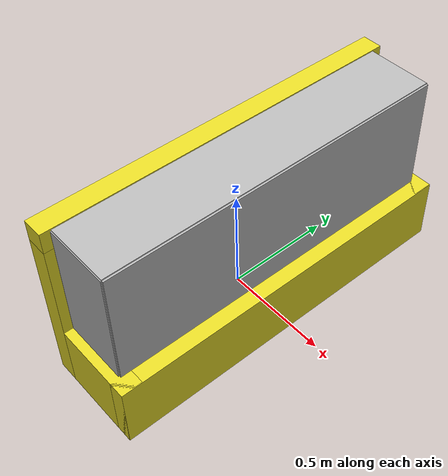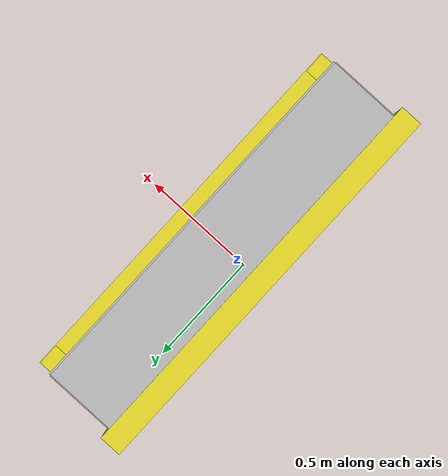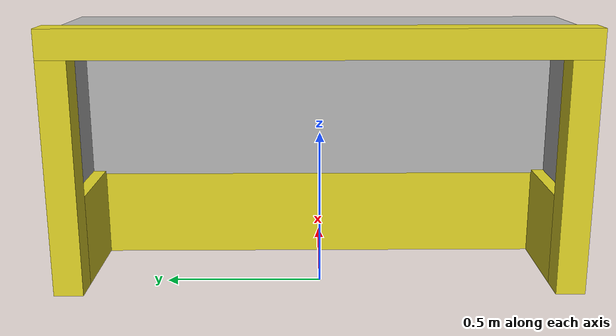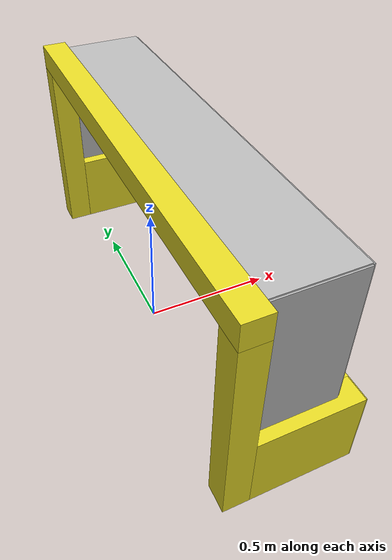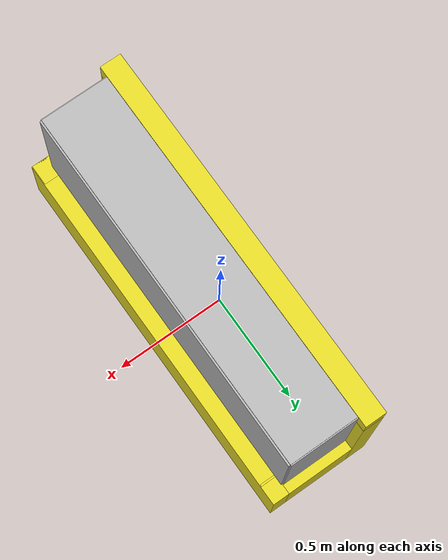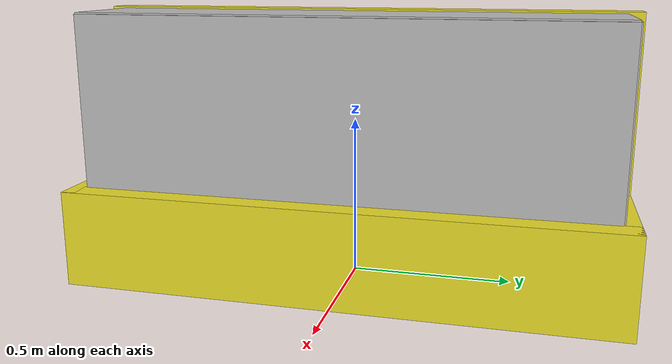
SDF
<?xml version="1.0" ?>
<sdf version="1.4">
  <model name="FIRA_Goal">
    <static>true</static>

    <link name="left_post">
      <pose>-0.078125 0.796875 0.375 0 0 0</pose>
      <collision name="left_post_collision">
        <geometry>
          <box><size>0.09375 0.09375 0.75</size></box>
        </geometry>
      </collision>
      <visual name="visual">
        <geometry>
          <box><size>0.09375 0.09375 0.75</size></box>
        </geometry>
        <material>
          <script>
            <uri>file://media/materials/scripts/gazebo.material</uri>
            <name>Gazebo/Yellow</name>
          </script>
        </material>
      </visual>
      <sensor name="RFsrRL" type="contact">
        <always_on>1</always_on>
        <update_rate>20</update_rate>
        <visualize>true</visualize>
        <contact>
            <collision>left_post_collision</collision>
        </contact>
        <plugin name="gazebo_ros_bumper_ controller" filename="libgazebo_ros_bumper.so">
            <alwaysOn>true</alwaysOn>
            <updateRate>20</updateRate>
            <bumperTopicName>bumper</bumperTopicName>
            <frameName>symbol</frameName>
        </plugin>
      </sensor>
    </link>

    <link name="right_post">
      <pose>-0.078125 -0.796875 0.375 0 0 0</pose>
      <collision name="right_post_collision">
        <geometry>
          <box><size>0.09375 0.09375 0.75</size></box>
        </geometry>
      </collision>
      <visual name="visual">
        <geometry>
          <box><size>0.09375 0.09375 0.75</size></box>
        </geometry>
        <material>
          <script>
            <uri>file://media/materials/scripts/gazebo.material</uri>
            <name>Gazebo/Yellow</name>
          </script>
        </material>
      </visual>
      <sensor name="RFsrRL" type="contact">
        <always_on>1</always_on>
        <update_rate>20</update_rate>
        <visualize>true</visualize>
        <contact>
            <collision>right_post_collision</collision>
        </contact>
        <plugin name="gazebo_ros_bumper_ controller" filename="libgazebo_ros_bumper.so">
            <alwaysOn>true</alwaysOn>
            <updateRate>20</updateRate>
            <bumperTopicName>bumper</bumperTopicName>
            <frameName>symbol</frameName>
        </plugin>
      </sensor>
    </link>

    <link name="crossbar">
      <pose>-0.078125 0 0.796875 0 0 0</pose>
      <collision name="crossbar_collision">
        <geometry>
          <box><size>0.09375 1.6875 0.09375</size></box>
        </geometry>
      </collision>
      <visual name="visual">
        <geometry>
          <box><size>0.09375 1.6875 0.09375</size></box>
        </geometry>
        <material>
          <script>
            <uri>file://media/materials/scripts/gazebo.material</uri>
            <name>Gazebo/Yellow</name>
          </script>
        </material>
      </visual>
      <sensor name="RFsrRL" type="contact">
        <always_on>1</always_on>
        <update_rate>20</update_rate>
        <visualize>true</visualize>
        <contact>
            <collision>crossbar_collision</collision>
        </contact>
        <plugin name="gazebo_ros_bumper_ controller" filename="libgazebo_ros_bumper.so">
            <alwaysOn>true</alwaysOn>
            <updateRate>20</updateRate>
            <bumperTopicName>bumper</bumperTopicName>
            <frameName>symbol</frameName>
        </plugin>
      </sensor>
    </link>

    <link name="left_support_horiz_lower">
      <pose>0.15625 0.796875 0.15 0 0 0</pose>
      <collision name="left_support_horiz_lower_collision">
        <geometry>
          <box><size>0.375 0.09375 0.3</size></box>
        </geometry>
      </collision>
      <visual name="visual">
        <geometry>
          <box><size>0.375 0.09375 0.3</size></box>
        </geometry>
        <material>
          <script>
            <uri>file://media/materials/scripts/gazebo.material</uri>
            <name>Gazebo/Yellow</name>
          </script>
        </material>
      </visual>
      <sensor name="RFsrRL" type="contact">
        <always_on>1</always_on>
        <update_rate>20</update_rate>
        <visualize>true</visualize>
        <contact>
            <collision>left_support_horiz_lower_collision</collision>
        </contact>
        <plugin name="gazebo_ros_bumper_ controller" filename="libgazebo_ros_bumper.so">
            <alwaysOn>true</alwaysOn>
            <updateRate>20</updateRate>
            <bumperTopicName>bumper</bumperTopicName>
            <frameName>symbol</frameName>
        </plugin>
      </sensor>
    </link>

    <link name="right_support_horiz_lower">
      <pose>0.15625 -0.796875 0.15 0 0 0</pose>
      <collision name="right_support_horiz_lower_collision">
        <geometry>
          <box><size>0.375 0.09375 0.3</size></box>
        </geometry>
      </collision>
      <visual name="visual">
        <geometry>
          <box><size>0.375 0.09375 0.3</size></box>
        </geometry>
        <material>
          <script>
            <uri>file://media/materials/scripts/gazebo.material</uri>
            <name>Gazebo/Yellow</name>
          </script>
        </material>
      </visual>
      <sensor name="RFsrRL" type="contact">
        <always_on>1</always_on>
        <update_rate>20</update_rate>
        <visualize>true</visualize>
        <contact>
            <collision>right_support_horiz_lower_collision</collision>
        </contact>
        <plugin name="gazebo_ros_bumper_ controller" filename="libgazebo_ros_bumper.so">
            <alwaysOn>true</alwaysOn>
            <updateRate>20</updateRate>
            <bumperTopicName>bumper</bumperTopicName>
            <frameName>symbol</frameName>
        </plugin>
      </sensor>
    </link>

        <link name="center_support_horiz_lower">
      <pose>0.309375 0 0.15 0 0 0</pose>
      <collision name="center_support_horiz_lower_collision">
        <geometry>
          <box><size>0.075 1.6875 0.3</size></box>
        </geometry>
      </collision>
      <visual name="visual">
        <geometry>
        <box><size>0.075 1.6875 0.3</size></box>
        </geometry>
        <material>
          <script>
            <uri>file://media/materials/scripts/gazebo.material</uri>
            <name>Gazebo/Yellow</name>
          </script>
        </material>
      </visual>
      <sensor name="RFsrRL" type="contact">
        <always_on>1</always_on>
        <update_rate>20</update_rate>
        <visualize>true</visualize>
        <contact>
            <collision>center_support_horiz_lower_collision</collision>
        </contact>
        <plugin name="gazebo_ros_bumper_ controller" filename="libgazebo_ros_bumper.so">
            <alwaysOn>true</alwaysOn>
            <updateRate>20</updateRate>
            <bumperTopicName>bumper</bumperTopicName>
            <frameName>symbol</frameName>
        </plugin>
      </sensor>
    </link>

    <link name="center_net">
      <pose>0.271875 0 0.561875 0 0 0</pose>
      <visual name="visual">
        <geometry>
          <box><size>0.01 1.59375 0.54375</size></box>
        </geometry>
        <material>
          <script>
            <uri>file://materials/scripts/</uri>
            <uri>file://materials/textures/</uri>
            <name>RoboCup/Net</name>
          </script>
        </material>
      </visual>
    </link>

    <link name="left_net">
      <pose>0.08125 0.796875 0.561875 0 0 0</pose>
      <visual name="visual">
        <geometry>
          <box>
            <size>0.375 0.01 0.54375</size>
          </box>
        </geometry>
        <material>
          <script>
            <uri>file://materials/scripts/</uri>
            <uri>file://materials/textures/</uri>
            <name>RoboCup/Net</name>
          </script>
        </material>
      </visual>
    </link>

    <link name="right_net">
      <pose>0.08125 -0.796875 0.561875 0 0 0</pose>
      <visual name="visual">
        <geometry>
          <box>
            <size>0.375 0.01 0.54375</size>
          </box>
        </geometry>
        <material>
          <script>
            <uri>file://materials/scripts/</uri>
            <uri>file://materials/textures/</uri>
            <name>RoboCup/Net</name>
          </script>
        </material>
      </visual>
    </link>

    <link name='upper_net'>
      <pose>0.08125 0 0.83375 0 0 0</pose>
      <visual name='visual'>
        <geometry>
          <box><size>0.375 1.59375 0.01</size></box>
        </geometry>
        <material>
          <script>
            <uri>file://materials/scripts/</uri>
            <uri>file://materials/textures/</uri>
            <name>RoboCup/Net</name>
          </script>
        </material>
      </visual>
    </link>

  </model>
</sdf>
